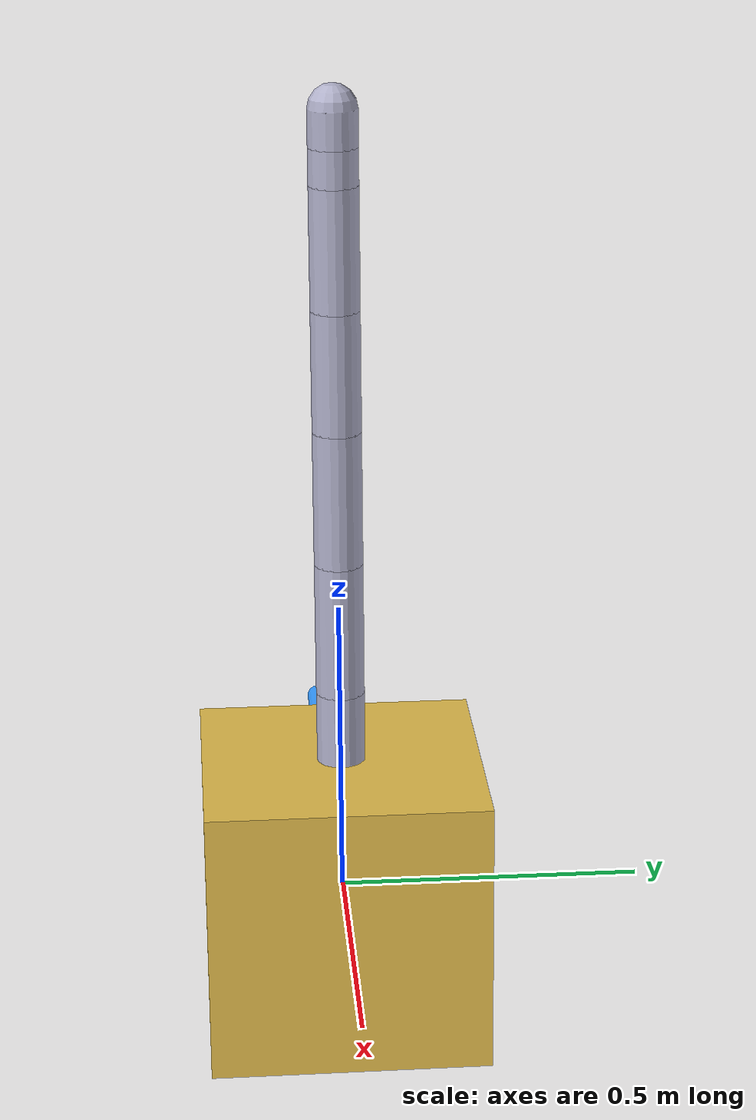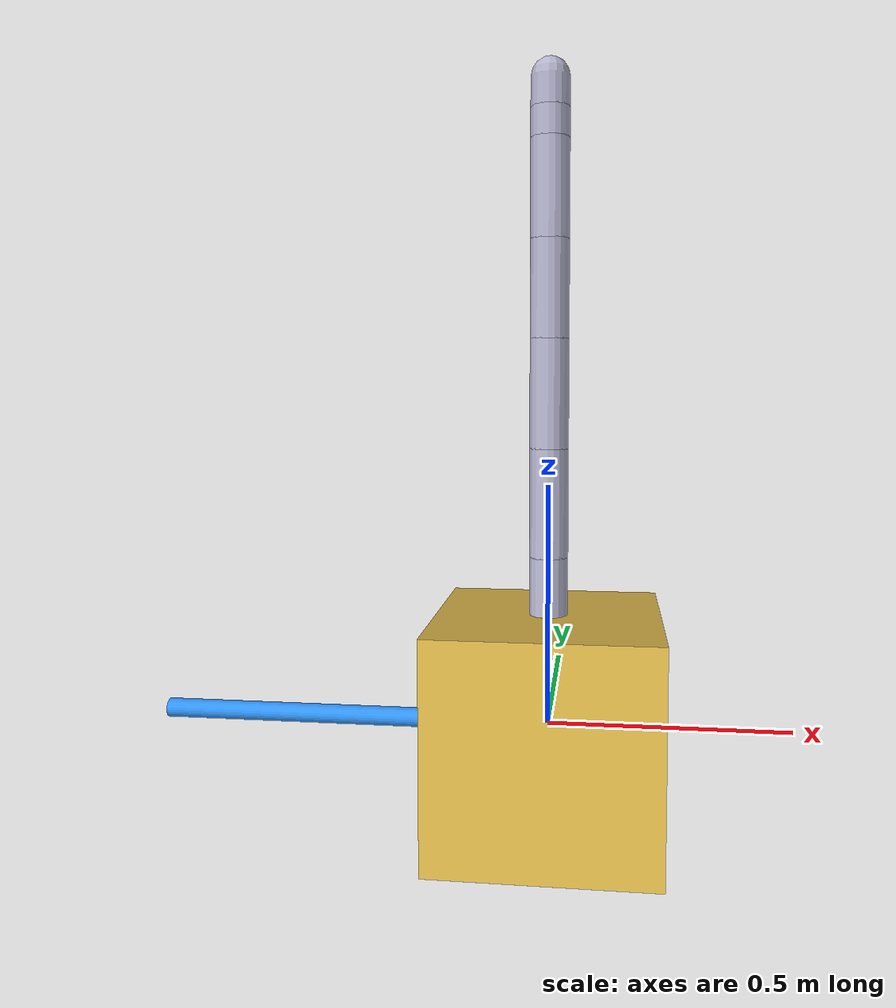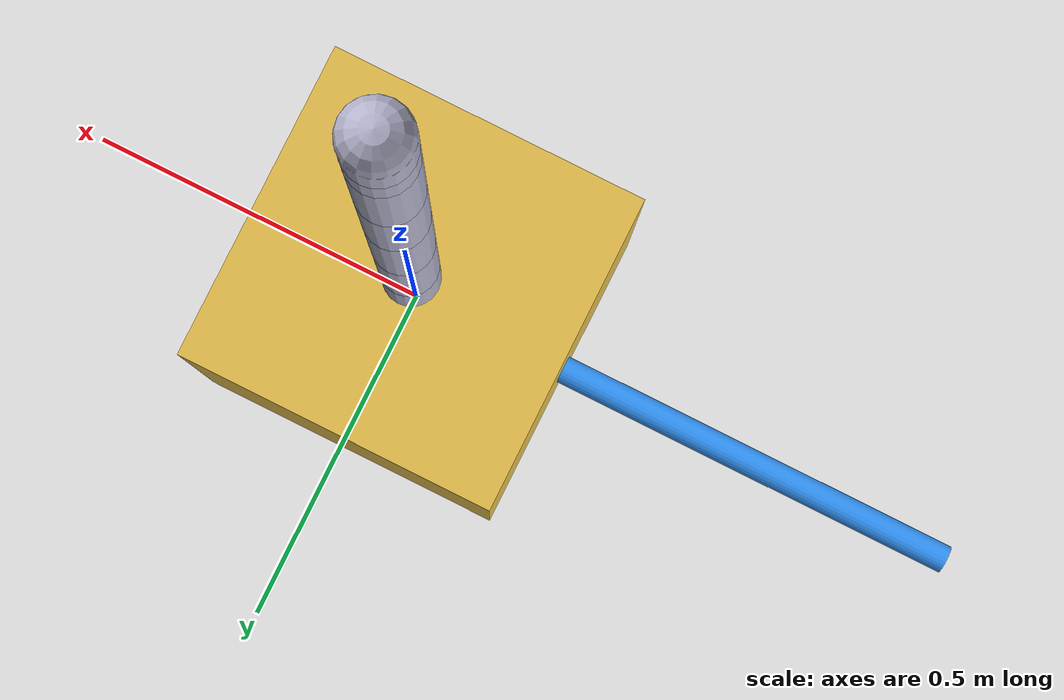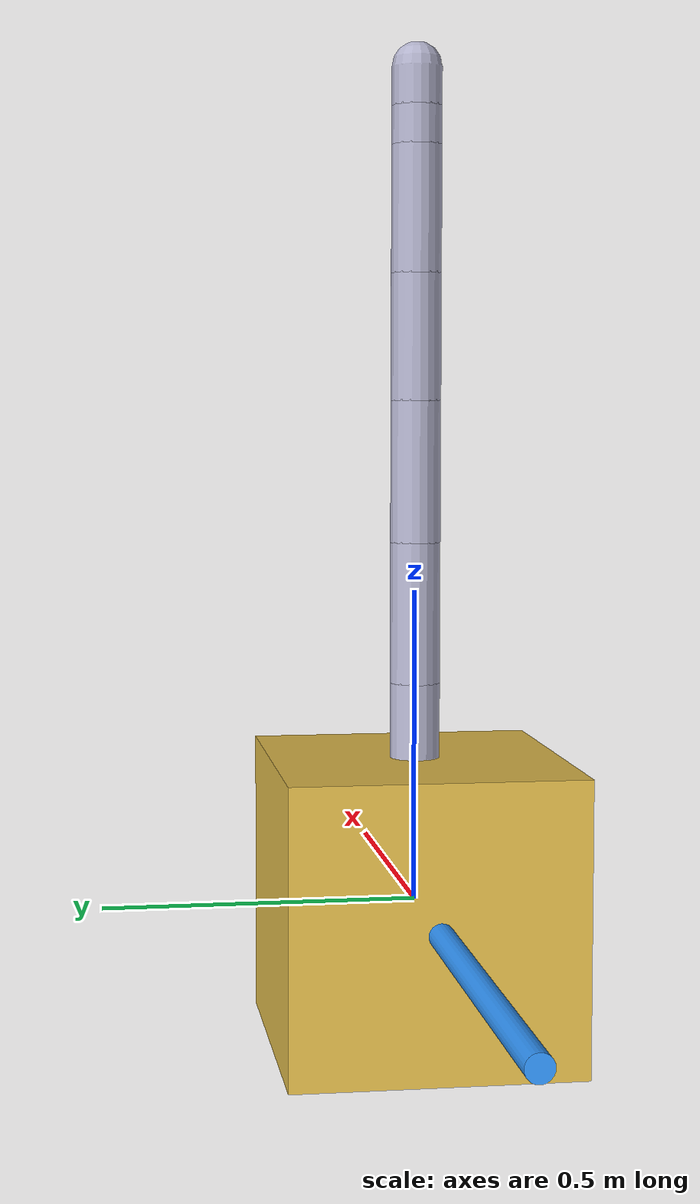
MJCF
<mujoco model="ff_small">
<option gravity="0 0 0" timestep="0.0005" integrator="RK4"/>
<default><joint armature="0.5"/><geom contype="0" conaffinity="0" rgba=".7 .7 .8 1"/></default>
<worldbody>
<light pos="0 -3 3" dir="0 1 -1"/>
<body name="base"><freejoint name="root"/>
<geom type="box" size="0.23207944168063896 0.23207944168063896 0.23207944168063896" mass="30.0" rgba=".9 .75 .3 1"/>
<geom type="cylinder" fromto="0 0 0 -0.832079441680639 0 0" size=".02" mass="0.001" rgba=".2 .6 1 1"/>
<body name="l1" pos="0 0 0.23207944168063896"><joint name="j1" axis="0 0 1"/><geom type="capsule" fromto="0 0 0 0 0 0.12" size=".04" mass="2.5"/>
<body name="l2" pos="0 0 0.12"><joint name="j2" axis="0 1 0"/><geom type="capsule" fromto="0 0 0 0 0 0.225" size=".04" mass="2.5"/>
<body name="l3" pos="0 0 0.225"><joint name="j3" axis="0 0 1"/><geom type="capsule" fromto="0 0 0 0 0 0.225" size=".04" mass="2.0"/>
<body name="l4" pos="0 0 0.225"><joint name="j4" axis="0 1 0"/><geom type="capsule" fromto="0 0 0 0 0 0.2" size=".04" mass="2.0"/>
<body name="l5" pos="0 0 0.2"><joint name="j5" axis="0 0 1"/><geom type="capsule" fromto="0 0 0 0 0 0.2" size=".04" mass="1.5"/>
<body name="l6" pos="0 0 0.2"><joint name="j6" axis="0 1 0"/><geom type="capsule" fromto="0 0 0 0 0 0.06" size=".04" mass="1.0"/>
<body name="l7" pos="0 0 0.06"><joint name="j7" axis="0 0 1"/><geom type="capsule" fromto="0 0 0 0 0 0.06" size=".04" mass="1.0"/>
<site name="ee" pos="0 0 0.06" size=".02" rgba="1 0 0 1"/></body></body></body></body></body></body></body>
</body>
</worldbody>
<actuator><velocity joint="j1" kv="150"/><velocity joint="j2" kv="150"/><velocity joint="j3" kv="150"/><velocity joint="j4" kv="150"/><velocity joint="j5" kv="150"/><velocity joint="j6" kv="150"/><velocity joint="j7" kv="150"/></actuator>
</mujoco>
